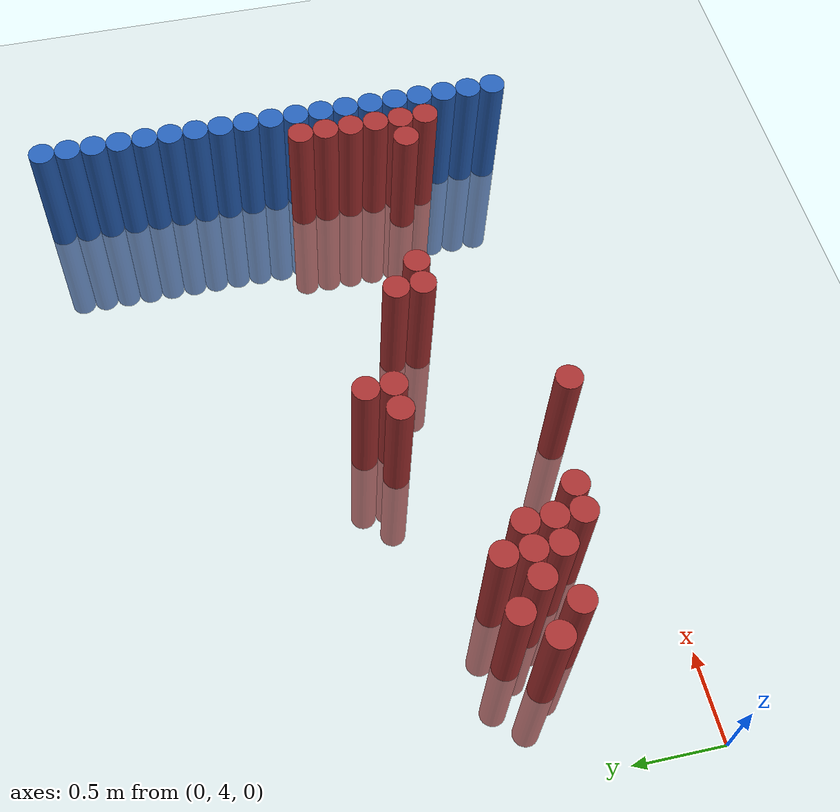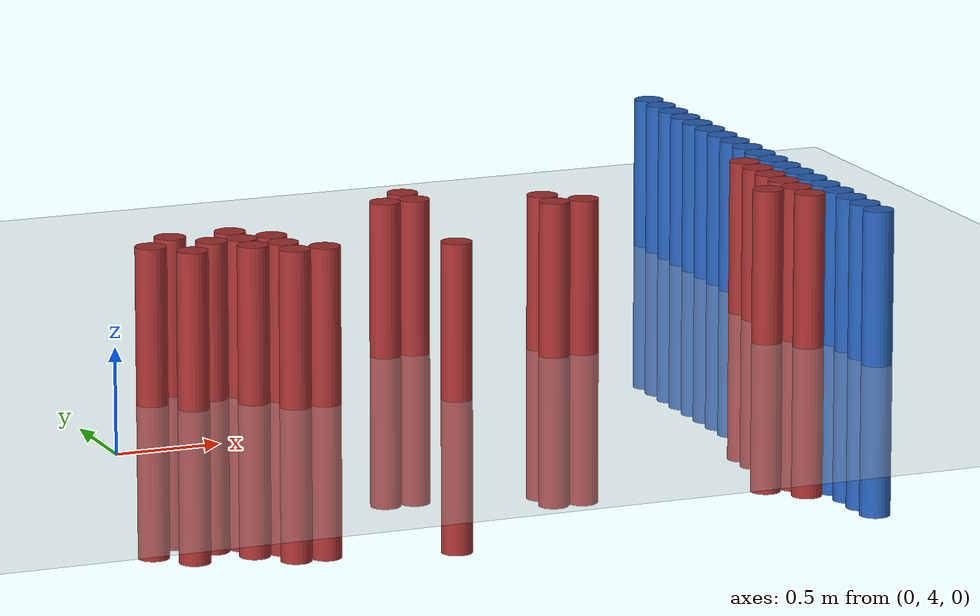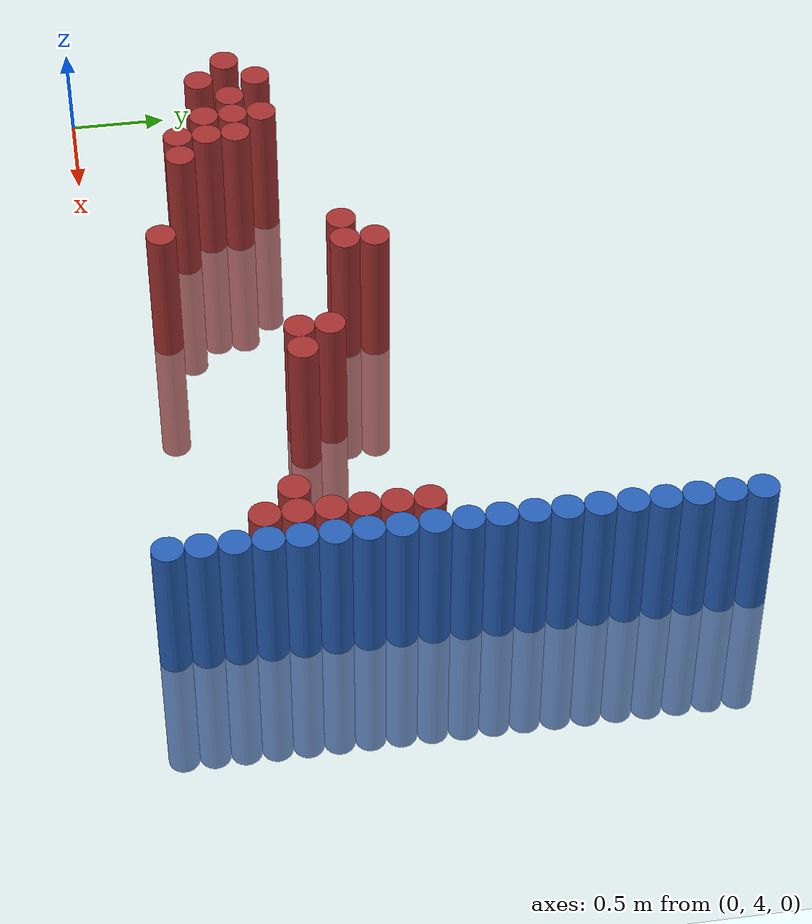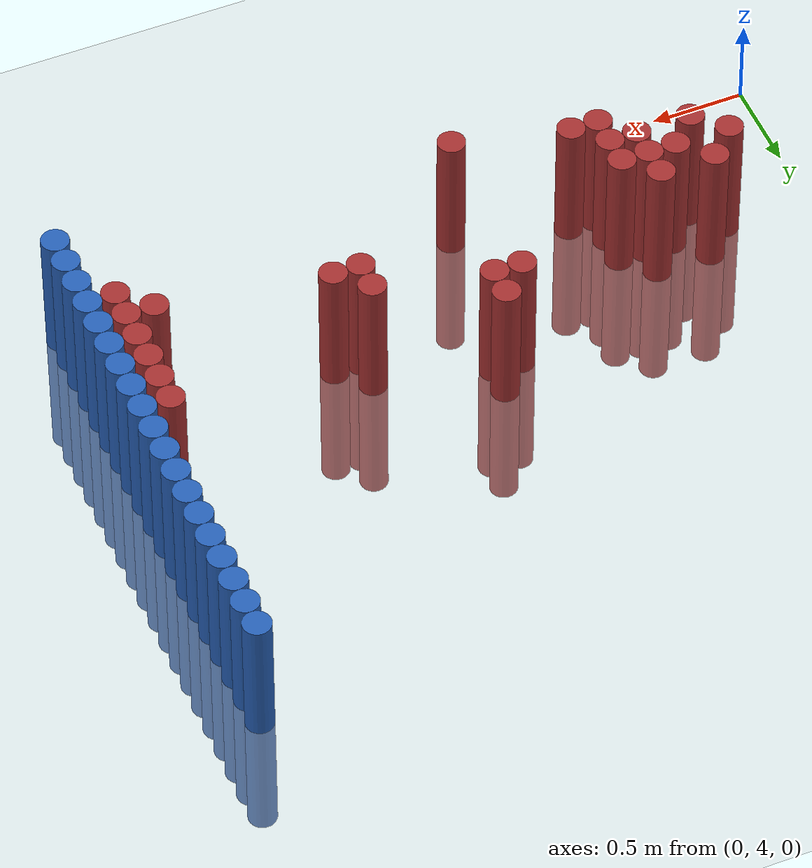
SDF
<sdf version="1.6">
 <world name="default">
  <model name="ground_plane">
   <static>1</static>
   <link name="link">
    <collision name="collision">
     <geometry><plane><normal>0 0 1</normal><size>100 100</size></plane></geometry>
     <surface><friction><ode><mu>100</mu><mu2>50</mu2></ode></friction></surface>
    </collision>
    <visual name="visual">
     <cast_shadows>0</cast_shadows>
     <geometry><plane><normal>0 0 1</normal><size>100 100</size></plane></geometry>
     <material>
      <script><uri>file://media/materials/scripts/gazebo.material</uri><name>Gazebo/Grey</name></script>
     </material>
    </visual>
   </link>
  </model>
  <model name="unit_cylinder_172">
   <static>1</static>
   <pose>3.925000 4.375000 0.000000 0.000000 0.000000 0.000000</pose>
   <link name="link">
    <inertial>
     <mass>1</mass>
     <inertia><ixx>0.145833</ixx><ixy>0</ixy><ixz>0</ixz><iyy>0.145833</iyy><iyz>0</iyz><izz>0.125</izz></inertia>
    </inertial>
    <collision name="collision">
     <geometry><cylinder><radius>0.075000</radius><length>1.5</length></cylinder></geometry>
    </collision>
    <visual name="visual">
     <geometry><cylinder><radius>0.075000</radius><length>1.5</length></cylinder></geometry>
     <material>
      <ambient>0.152000 0.379000 0.720000 1</ambient>
      <diffuse>0.152000 0.379000 0.720000 1</diffuse>
     </material>
     <material>
      <script><name>Gazebo/Grey</name><uri>file://media/materials/scripts/gazebo.material</uri></script>
     </material>
    </visual>
   </link>
  </model>
  <model name="unit_cylinder_174">
   <static>1</static>
   <pose>3.925000 4.525000 0.000000 0.000000 0.000000 0.000000</pose>
   <link name="link">
    <inertial>
     <mass>1</mass>
     <inertia><ixx>0.145833</ixx><ixy>0</ixy><ixz>0</ixz><iyy>0.145833</iyy><iyz>0</iyz><izz>0.125</izz></inertia>
    </inertial>
    <collision name="collision">
     <geometry><cylinder><radius>0.075000</radius><length>1.5</length></cylinder></geometry>
    </collision>
    <visual name="visual">
     <geometry><cylinder><radius>0.075000</radius><length>1.5</length></cylinder></geometry>
     <material>
      <ambient>0.152000 0.379000 0.720000 1</ambient>
      <diffuse>0.152000 0.379000 0.720000 1</diffuse>
     </material>
     <material>
      <script><name>Gazebo/Grey</name><uri>file://media/materials/scripts/gazebo.material</uri></script>
     </material>
    </visual>
   </link>
  </model>
  <model name="unit_cylinder_176">
   <static>1</static>
   <pose>3.925000 4.675000 0.000000 0.000000 0.000000 0.000000</pose>
   <link name="link">
    <inertial>
     <mass>1</mass>
     <inertia><ixx>0.145833</ixx><ixy>0</ixy><ixz>0</ixz><iyy>0.145833</iyy><iyz>0</iyz><izz>0.125</izz></inertia>
    </inertial>
    <collision name="collision">
     <geometry><cylinder><radius>0.075000</radius><length>1.5</length></cylinder></geometry>
    </collision>
    <visual name="visual">
     <geometry><cylinder><radius>0.075000</radius><length>1.5</length></cylinder></geometry>
     <material>
      <ambient>0.152000 0.379000 0.720000 1</ambient>
      <diffuse>0.152000 0.379000 0.720000 1</diffuse>
     </material>
     <material>
      <script><name>Gazebo/Grey</name><uri>file://media/materials/scripts/gazebo.material</uri></script>
     </material>
    </visual>
   </link>
  </model>
  <model name="unit_cylinder_178">
   <static>1</static>
   <pose>3.925000 4.825000 0.000000 0.000000 0.000000 0.000000</pose>
   <link name="link">
    <inertial>
     <mass>1</mass>
     <inertia><ixx>0.145833</ixx><ixy>0</ixy><ixz>0</ixz><iyy>0.145833</iyy><iyz>0</iyz><izz>0.125</izz></inertia>
    </inertial>
    <collision name="collision">
     <geometry><cylinder><radius>0.075000</radius><length>1.5</length></cylinder></geometry>
    </collision>
    <visual name="visual">
     <geometry><cylinder><radius>0.075000</radius><length>1.5</length></cylinder></geometry>
     <material>
      <ambient>0.152000 0.379000 0.720000 1</ambient>
      <diffuse>0.152000 0.379000 0.720000 1</diffuse>
     </material>
     <material>
      <script><name>Gazebo/Grey</name><uri>file://media/materials/scripts/gazebo.material</uri></script>
     </material>
    </visual>
   </link>
  </model>
  <model name="unit_cylinder_180">
   <static>1</static>
   <pose>3.925000 4.975000 0.000000 0.000000 0.000000 0.000000</pose>
   <link name="link">
    <inertial>
     <mass>1</mass>
     <inertia><ixx>0.145833</ixx><ixy>0</ixy><ixz>0</ixz><iyy>0.145833</iyy><iyz>0</iyz><izz>0.125</izz></inertia>
    </inertial>
    <collision name="collision">
     <geometry><cylinder><radius>0.075000</radius><length>1.5</length></cylinder></geometry>
    </collision>
    <visual name="visual">
     <geometry><cylinder><radius>0.075000</radius><length>1.5</length></cylinder></geometry>
     <material>
      <ambient>0.152000 0.379000 0.720000 1</ambient>
      <diffuse>0.152000 0.379000 0.720000 1</diffuse>
     </material>
     <material>
      <script><name>Gazebo/Grey</name><uri>file://media/materials/scripts/gazebo.material</uri></script>
     </material>
    </visual>
   </link>
  </model>
  <model name="unit_cylinder_182">
   <static>1</static>
   <pose>3.925000 5.125000 0.000000 0.000000 0.000000 0.000000</pose>
   <link name="link">
    <inertial>
     <mass>1</mass>
     <inertia><ixx>0.145833</ixx><ixy>0</ixy><ixz>0</ixz><iyy>0.145833</iyy><iyz>0</iyz><izz>0.125</izz></inertia>
    </inertial>
    <collision name="collision">
     <geometry><cylinder><radius>0.075000</radius><length>1.5</length></cylinder></geometry>
    </collision>
    <visual name="visual">
     <geometry><cylinder><radius>0.075000</radius><length>1.5</length></cylinder></geometry>
     <material>
      <ambient>0.152000 0.379000 0.720000 1</ambient>
      <diffuse>0.152000 0.379000 0.720000 1</diffuse>
     </material>
     <material>
      <script><name>Gazebo/Grey</name><uri>file://media/materials/scripts/gazebo.material</uri></script>
     </material>
    </visual>
   </link>
  </model>
  <model name="unit_cylinder_184">
   <static>1</static>
   <pose>3.925000 5.275000 0.000000 0.000000 0.000000 0.000000</pose>
   <link name="link">
    <inertial>
     <mass>1</mass>
     <inertia><ixx>0.145833</ixx><ixy>0</ixy><ixz>0</ixz><iyy>0.145833</iyy><iyz>0</iyz><izz>0.125</izz></inertia>
    </inertial>
    <collision name="collision">
     <geometry><cylinder><radius>0.075000</radius><length>1.5</length></cylinder></geometry>
    </collision>
    <visual name="visual">
     <geometry><cylinder><radius>0.075000</radius><length>1.5</length></cylinder></geometry>
     <material>
      <ambient>0.152000 0.379000 0.720000 1</ambient>
      <diffuse>0.152000 0.379000 0.720000 1</diffuse>
     </material>
     <material>
      <script><name>Gazebo/Grey</name><uri>file://media/materials/scripts/gazebo.material</uri></script>
     </material>
    </visual>
   </link>
  </model>
  <model name="unit_cylinder_186">
   <static>1</static>
   <pose>3.925000 5.425000 0.000000 0.000000 0.000000 0.000000</pose>
   <link name="link">
    <inertial>
     <mass>1</mass>
     <inertia><ixx>0.145833</ixx><ixy>0</ixy><ixz>0</ixz><iyy>0.145833</iyy><iyz>0</iyz><izz>0.125</izz></inertia>
    </inertial>
    <collision name="collision">
     <geometry><cylinder><radius>0.075000</radius><length>1.5</length></cylinder></geometry>
    </collision>
    <visual name="visual">
     <geometry><cylinder><radius>0.075000</radius><length>1.5</length></cylinder></geometry>
     <material>
      <ambient>0.152000 0.379000 0.720000 1</ambient>
      <diffuse>0.152000 0.379000 0.720000 1</diffuse>
     </material>
     <material>
      <script><name>Gazebo/Grey</name><uri>file://media/materials/scripts/gazebo.material</uri></script>
     </material>
    </visual>
   </link>
  </model>
  <model name="unit_cylinder_188">
   <static>1</static>
   <pose>3.925000 5.575000 0.000000 0.000000 0.000000 0.000000</pose>
   <link name="link">
    <inertial>
     <mass>1</mass>
     <inertia><ixx>0.145833</ixx><ixy>0</ixy><ixz>0</ixz><iyy>0.145833</iyy><iyz>0</iyz><izz>0.125</izz></inertia>
    </inertial>
    <collision name="collision">
     <geometry><cylinder><radius>0.075000</radius><length>1.5</length></cylinder></geometry>
    </collision>
    <visual name="visual">
     <geometry><cylinder><radius>0.075000</radius><length>1.5</length></cylinder></geometry>
     <material>
      <ambient>0.152000 0.379000 0.720000 1</ambient>
      <diffuse>0.152000 0.379000 0.720000 1</diffuse>
     </material>
     <material>
      <script><name>Gazebo/Grey</name><uri>file://media/materials/scripts/gazebo.material</uri></script>
     </material>
    </visual>
   </link>
  </model>
  <model name="unit_cylinder_190">
   <static>1</static>
   <pose>3.925000 5.725000 0.000000 0.000000 0.000000 0.000000</pose>
   <link name="link">
    <inertial>
     <mass>1</mass>
     <inertia><ixx>0.145833</ixx><ixy>0</ixy><ixz>0</ixz><iyy>0.145833</iyy><iyz>0</iyz><izz>0.125</izz></inertia>
    </inertial>
    <collision name="collision">
     <geometry><cylinder><radius>0.075000</radius><length>1.5</length></cylinder></geometry>
    </collision>
    <visual name="visual">
     <geometry><cylinder><radius>0.075000</radius><length>1.5</length></cylinder></geometry>
     <material>
      <ambient>0.152000 0.379000 0.720000 1</ambient>
      <diffuse>0.152000 0.379000 0.720000 1</diffuse>
     </material>
     <material>
      <script><name>Gazebo/Grey</name><uri>file://media/materials/scripts/gazebo.material</uri></script>
     </material>
    </visual>
   </link>
  </model>
  <model name="unit_cylinder_192">
   <static>1</static>
   <pose>3.925000 5.875000 0.000000 0.000000 0.000000 0.000000</pose>
   <link name="link">
    <inertial>
     <mass>1</mass>
     <inertia><ixx>0.145833</ixx><ixy>0</ixy><ixz>0</ixz><iyy>0.145833</iyy><iyz>0</iyz><izz>0.125</izz></inertia>
    </inertial>
    <collision name="collision">
     <geometry><cylinder><radius>0.075000</radius><length>1.5</length></cylinder></geometry>
    </collision>
    <visual name="visual">
     <geometry><cylinder><radius>0.075000</radius><length>1.5</length></cylinder></geometry>
     <material>
      <ambient>0.152000 0.379000 0.720000 1</ambient>
      <diffuse>0.152000 0.379000 0.720000 1</diffuse>
     </material>
     <material>
      <script><name>Gazebo/Grey</name><uri>file://media/materials/scripts/gazebo.material</uri></script>
     </material>
    </visual>
   </link>
  </model>
  <model name="unit_cylinder_194">
   <static>1</static>
   <pose>3.925000 6.025000 0.000000 0.000000 0.000000 0.000000</pose>
   <link name="link">
    <inertial>
     <mass>1</mass>
     <inertia><ixx>0.145833</ixx><ixy>0</ixy><ixz>0</ixz><iyy>0.145833</iyy><iyz>0</iyz><izz>0.125</izz></inertia>
    </inertial>
    <collision name="collision">
     <geometry><cylinder><radius>0.075000</radius><length>1.5</length></cylinder></geometry>
    </collision>
    <visual name="visual">
     <geometry><cylinder><radius>0.075000</radius><length>1.5</length></cylinder></geometry>
     <material>
      <ambient>0.152000 0.379000 0.720000 1</ambient>
      <diffuse>0.152000 0.379000 0.720000 1</diffuse>
     </material>
     <material>
      <script><name>Gazebo/Grey</name><uri>file://media/materials/scripts/gazebo.material</uri></script>
     </material>
    </visual>
   </link>
  </model>
  <model name="unit_cylinder_196">
   <static>1</static>
   <pose>3.925000 6.175000 0.000000 0.000000 0.000000 0.000000</pose>
   <link name="link">
    <inertial>
     <mass>1</mass>
     <inertia><ixx>0.145833</ixx><ixy>0</ixy><ixz>0</ixz><iyy>0.145833</iyy><iyz>0</iyz><izz>0.125</izz></inertia>
    </inertial>
    <collision name="collision">
     <geometry><cylinder><radius>0.075000</radius><length>1.5</length></cylinder></geometry>
    </collision>
    <visual name="visual">
     <geometry><cylinder><radius>0.075000</radius><length>1.5</length></cylinder></geometry>
     <material>
      <ambient>0.152000 0.379000 0.720000 1</ambient>
      <diffuse>0.152000 0.379000 0.720000 1</diffuse>
     </material>
     <material>
      <script><name>Gazebo/Grey</name><uri>file://media/materials/scripts/gazebo.material</uri></script>
     </material>
    </visual>
   </link>
  </model>
  <model name="unit_cylinder_198">
   <static>1</static>
   <pose>3.925000 6.325000 0.000000 0.000000 0.000000 0.000000</pose>
   <link name="link">
    <inertial>
     <mass>1</mass>
     <inertia><ixx>0.145833</ixx><ixy>0</ixy><ixz>0</ixz><iyy>0.145833</iyy><iyz>0</iyz><izz>0.125</izz></inertia>
    </inertial>
    <collision name="collision">
     <geometry><cylinder><radius>0.075000</radius><length>1.5</length></cylinder></geometry>
    </collision>
    <visual name="visual">
     <geometry><cylinder><radius>0.075000</radius><length>1.5</length></cylinder></geometry>
     <material>
      <ambient>0.152000 0.379000 0.720000 1</ambient>
      <diffuse>0.152000 0.379000 0.720000 1</diffuse>
     </material>
     <material>
      <script><name>Gazebo/Grey</name><uri>file://media/materials/scripts/gazebo.material</uri></script>
     </material>
    </visual>
   </link>
  </model>
  <model name="unit_cylinder_200">
   <static>1</static>
   <pose>3.925000 6.475000 0.000000 0.000000 0.000000 0.000000</pose>
   <link name="link">
    <inertial>
     <mass>1</mass>
     <inertia><ixx>0.145833</ixx><ixy>0</ixy><ixz>0</ixz><iyy>0.145833</iyy><iyz>0</iyz><izz>0.125</izz></inertia>
    </inertial>
    <collision name="collision">
     <geometry><cylinder><radius>0.075000</radius><length>1.5</length></cylinder></geometry>
    </collision>
    <visual name="visual">
     <geometry><cylinder><radius>0.075000</radius><length>1.5</length></cylinder></geometry>
     <material>
      <ambient>0.152000 0.379000 0.720000 1</ambient>
      <diffuse>0.152000 0.379000 0.720000 1</diffuse>
     </material>
     <material>
      <script><name>Gazebo/Grey</name><uri>file://media/materials/scripts/gazebo.material</uri></script>
     </material>
    </visual>
   </link>
  </model>
  <model name="unit_cylinder_202">
   <static>1</static>
   <pose>3.925000 6.625000 0.000000 0.000000 0.000000 0.000000</pose>
   <link name="link">
    <inertial>
     <mass>1</mass>
     <inertia><ixx>0.145833</ixx><ixy>0</ixy><ixz>0</ixz><iyy>0.145833</iyy><iyz>0</iyz><izz>0.125</izz></inertia>
    </inertial>
    <collision name="collision">
     <geometry><cylinder><radius>0.075000</radius><length>1.5</length></cylinder></geometry>
    </collision>
    <visual name="visual">
     <geometry><cylinder><radius>0.075000</radius><length>1.5</length></cylinder></geometry>
     <material>
      <ambient>0.152000 0.379000 0.720000 1</ambient>
      <diffuse>0.152000 0.379000 0.720000 1</diffuse>
     </material>
     <material>
      <script><name>Gazebo/Grey</name><uri>file://media/materials/scripts/gazebo.material</uri></script>
     </material>
    </visual>
   </link>
  </model>
  <model name="unit_cylinder_204">
   <static>1</static>
   <pose>3.925000 6.775000 0.000000 0.000000 0.000000 0.000000</pose>
   <link name="link">
    <inertial>
     <mass>1</mass>
     <inertia><ixx>0.145833</ixx><ixy>0</ixy><ixz>0</ixz><iyy>0.145833</iyy><iyz>0</iyz><izz>0.125</izz></inertia>
    </inertial>
    <collision name="collision">
     <geometry><cylinder><radius>0.075000</radius><length>1.5</length></cylinder></geometry>
    </collision>
    <visual name="visual">
     <geometry><cylinder><radius>0.075000</radius><length>1.5</length></cylinder></geometry>
     <material>
      <ambient>0.152000 0.379000 0.720000 1</ambient>
      <diffuse>0.152000 0.379000 0.720000 1</diffuse>
     </material>
     <material>
      <script><name>Gazebo/Grey</name><uri>file://media/materials/scripts/gazebo.material</uri></script>
     </material>
    </visual>
   </link>
  </model>
  <model name="unit_cylinder_206">
   <static>1</static>
   <pose>3.925000 6.925000 0.000000 0.000000 0.000000 0.000000</pose>
   <link name="link">
    <inertial>
     <mass>1</mass>
     <inertia><ixx>0.145833</ixx><ixy>0</ixy><ixz>0</ixz><iyy>0.145833</iyy><iyz>0</iyz><izz>0.125</izz></inertia>
    </inertial>
    <collision name="collision">
     <geometry><cylinder><radius>0.075000</radius><length>1.5</length></cylinder></geometry>
    </collision>
    <visual name="visual">
     <geometry><cylinder><radius>0.075000</radius><length>1.5</length></cylinder></geometry>
     <material>
      <ambient>0.152000 0.379000 0.720000 1</ambient>
      <diffuse>0.152000 0.379000 0.720000 1</diffuse>
     </material>
     <material>
      <script><name>Gazebo/Grey</name><uri>file://media/materials/scripts/gazebo.material</uri></script>
     </material>
    </visual>
   </link>
  </model>
  <model name="unit_cylinder_376">
   <static>1</static>
   <pose>0.475000 4.825000 0.000000 0.000000 0.000000 0.000000</pose>
   <link name="link">
    <inertial>
     <mass>1</mass>
     <inertia><ixx>0.145833</ixx><ixy>0</ixy><ixz>0</ixz><iyy>0.145833</iyy><iyz>0</iyz><izz>0.125</izz></inertia>
    </inertial>
    <collision name="collision">
     <geometry><cylinder><radius>0.075000</radius><length>1.5</length></cylinder></geometry>
    </collision>
    <visual name="visual">
     <geometry><cylinder><radius>0.075000</radius><length>1.5</length></cylinder></geometry>
     <material>
      <ambient>0.648000 0.192000 0.192000 1</ambient>
      <diffuse>0.648000 0.192000 0.192000 1</diffuse>
     </material>
     <material>
      <script><name>Gazebo/Grey</name><uri>file://media/materials/scripts/gazebo.material</uri></script>
     </material>
    </visual>
   </link>
  </model>
  <model name="unit_cylinder_378">
   <static>1</static>
   <pose>0.625000 4.675000 0.000000 0.000000 0.000000 0.000000</pose>
   <link name="link">
    <inertial>
     <mass>1</mass>
     <inertia><ixx>0.145833</ixx><ixy>0</ixy><ixz>0</ixz><iyy>0.145833</iyy><iyz>0</iyz><izz>0.125</izz></inertia>
    </inertial>
    <collision name="collision">
     <geometry><cylinder><radius>0.075000</radius><length>1.5</length></cylinder></geometry>
    </collision>
    <visual name="visual">
     <geometry><cylinder><radius>0.075000</radius><length>1.5</length></cylinder></geometry>
     <material>
      <ambient>0.648000 0.192000 0.192000 1</ambient>
      <diffuse>0.648000 0.192000 0.192000 1</diffuse>
     </material>
     <material>
      <script><name>Gazebo/Grey</name><uri>file://media/materials/scripts/gazebo.material</uri></script>
     </material>
    </visual>
   </link>
  </model>
  <model name="unit_cylinder_379">
   <static>1</static>
   <pose>0.625000 4.975000 0.000000 0.000000 0.000000 0.000000</pose>
   <link name="link">
    <inertial>
     <mass>1</mass>
     <inertia><ixx>0.145833</ixx><ixy>0</ixy><ixz>0</ixz><iyy>0.145833</iyy><iyz>0</iyz><izz>0.125</izz></inertia>
    </inertial>
    <collision name="collision">
     <geometry><cylinder><radius>0.075000</radius><length>1.5</length></cylinder></geometry>
    </collision>
    <visual name="visual">
     <geometry><cylinder><radius>0.075000</radius><length>1.5</length></cylinder></geometry>
     <material>
      <ambient>0.648000 0.192000 0.192000 1</ambient>
      <diffuse>0.648000 0.192000 0.192000 1</diffuse>
     </material>
     <material>
      <script><name>Gazebo/Grey</name><uri>file://media/materials/scripts/gazebo.material</uri></script>
     </material>
    </visual>
   </link>
  </model>
  <model name="unit_cylinder_380">
   <static>1</static>
   <pose>0.775000 4.825000 0.000000 0.000000 0.000000 0.000000</pose>
   <link name="link">
    <inertial>
     <mass>1</mass>
     <inertia><ixx>0.145833</ixx><ixy>0</ixy><ixz>0</ixz><iyy>0.145833</iyy><iyz>0</iyz><izz>0.125</izz></inertia>
    </inertial>
    <collision name="collision">
     <geometry><cylinder><radius>0.075000</radius><length>1.5</length></cylinder></geometry>
    </collision>
    <visual name="visual">
     <geometry><cylinder><radius>0.075000</radius><length>1.5</length></cylinder></geometry>
     <material>
      <ambient>0.648000 0.192000 0.192000 1</ambient>
      <diffuse>0.648000 0.192000 0.192000 1</diffuse>
     </material>
     <material>
      <script><name>Gazebo/Grey</name><uri>file://media/materials/scripts/gazebo.material</uri></script>
     </material>
    </visual>
   </link>
  </model>
  <model name="unit_cylinder_386">
   <static>1</static>
   <pose>0.925000 4.675000 0.000000 0.000000 0.000000 0.000000</pose>
   <link name="link">
    <inertial>
     <mass>1</mass>
     <inertia><ixx>0.145833</ixx><ixy>0</ixy><ixz>0</ixz><iyy>0.145833</iyy><iyz>0</iyz><izz>0.125</izz></inertia>
    </inertial>
    <collision name="collision">
     <geometry><cylinder><radius>0.075000</radius><length>1.5</length></cylinder></geometry>
    </collision>
    <visual name="visual">
     <geometry><cylinder><radius>0.075000</radius><length>1.5</length></cylinder></geometry>
     <material>
      <ambient>0.648000 0.192000 0.192000 1</ambient>
      <diffuse>0.648000 0.192000 0.192000 1</diffuse>
     </material>
     <material>
      <script><name>Gazebo/Grey</name><uri>file://media/materials/scripts/gazebo.material</uri></script>
     </material>
    </visual>
   </link>
  </model>
  <model name="unit_cylinder_387">
   <static>1</static>
   <pose>0.925000 4.825000 0.000000 0.000000 0.000000 0.000000</pose>
   <link name="link">
    <inertial>
     <mass>1</mass>
     <inertia><ixx>0.145833</ixx><ixy>0</ixy><ixz>0</ixz><iyy>0.145833</iyy><iyz>0</iyz><izz>0.125</izz></inertia>
    </inertial>
    <collision name="collision">
     <geometry><cylinder><radius>0.075000</radius><length>1.5</length></cylinder></geometry>
    </collision>
    <visual name="visual">
     <geometry><cylinder><radius>0.075000</radius><length>1.5</length></cylinder></geometry>
     <material>
      <ambient>0.648000 0.192000 0.192000 1</ambient>
      <diffuse>0.648000 0.192000 0.192000 1</diffuse>
     </material>
     <material>
      <script><name>Gazebo/Grey</name><uri>file://media/materials/scripts/gazebo.material</uri></script>
     </material>
    </visual>
   </link>
  </model>
  <model name="unit_cylinder_388">
   <static>1</static>
   <pose>0.925000 4.975000 0.000000 0.000000 0.000000 0.000000</pose>
   <link name="link">
    <inertial>
     <mass>1</mass>
     <inertia><ixx>0.145833</ixx><ixy>0</ixy><ixz>0</ixz><iyy>0.145833</iyy><iyz>0</iyz><izz>0.125</izz></inertia>
    </inertial>
    <collision name="collision">
     <geometry><cylinder><radius>0.075000</radius><length>1.5</length></cylinder></geometry>
    </collision>
    <visual name="visual">
     <geometry><cylinder><radius>0.075000</radius><length>1.5</length></cylinder></geometry>
     <material>
      <ambient>0.648000 0.192000 0.192000 1</ambient>
      <diffuse>0.648000 0.192000 0.192000 1</diffuse>
     </material>
     <material>
      <script><name>Gazebo/Grey</name><uri>file://media/materials/scripts/gazebo.material</uri></script>
     </material>
    </visual>
   </link>
  </model>
  <model name="unit_cylinder_397">
   <static>1</static>
   <pose>1.075000 4.525000 0.000000 0.000000 0.000000 0.000000</pose>
   <link name="link">
    <inertial>
     <mass>1</mass>
     <inertia><ixx>0.145833</ixx><ixy>0</ixy><ixz>0</ixz><iyy>0.145833</iyy><iyz>0</iyz><izz>0.125</izz></inertia>
    </inertial>
    <collision name="collision">
     <geometry><cylinder><radius>0.075000</radius><length>1.5</length></cylinder></geometry>
    </collision>
    <visual name="visual">
     <geometry><cylinder><radius>0.075000</radius><length>1.5</length></cylinder></geometry>
     <material>
      <ambient>0.648000 0.192000 0.192000 1</ambient>
      <diffuse>0.648000 0.192000 0.192000 1</diffuse>
     </material>
     <material>
      <script><name>Gazebo/Grey</name><uri>file://media/materials/scripts/gazebo.material</uri></script>
     </material>
    </visual>
   </link>
  </model>
  <model name="unit_cylinder_398">
   <static>1</static>
   <pose>1.075000 4.675000 0.000000 0.000000 0.000000 0.000000</pose>
   <link name="link">
    <inertial>
     <mass>1</mass>
     <inertia><ixx>0.145833</ixx><ixy>0</ixy><ixz>0</ixz><iyy>0.145833</iyy><iyz>0</iyz><izz>0.125</izz></inertia>
    </inertial>
    <collision name="collision">
     <geometry><cylinder><radius>0.075000</radius><length>1.5</length></cylinder></geometry>
    </collision>
    <visual name="visual">
     <geometry><cylinder><radius>0.075000</radius><length>1.5</length></cylinder></geometry>
     <material>
      <ambient>0.648000 0.192000 0.192000 1</ambient>
      <diffuse>0.648000 0.192000 0.192000 1</diffuse>
     </material>
     <material>
      <script><name>Gazebo/Grey</name><uri>file://media/materials/scripts/gazebo.material</uri></script>
     </material>
    </visual>
   </link>
  </model>
  <model name="unit_cylinder_399">
   <static>1</static>
   <pose>1.075000 4.825000 0.000000 0.000000 0.000000 0.000000</pose>
   <link name="link">
    <inertial>
     <mass>1</mass>
     <inertia><ixx>0.145833</ixx><ixy>0</ixy><ixz>0</ixz><iyy>0.145833</iyy><iyz>0</iyz><izz>0.125</izz></inertia>
    </inertial>
    <collision name="collision">
     <geometry><cylinder><radius>0.075000</radius><length>1.5</length></cylinder></geometry>
    </collision>
    <visual name="visual">
     <geometry><cylinder><radius>0.075000</radius><length>1.5</length></cylinder></geometry>
     <material>
      <ambient>0.648000 0.192000 0.192000 1</ambient>
      <diffuse>0.648000 0.192000 0.192000 1</diffuse>
     </material>
     <material>
      <script><name>Gazebo/Grey</name><uri>file://media/materials/scripts/gazebo.material</uri></script>
     </material>
    </visual>
   </link>
  </model>
  <model name="unit_cylinder_400">
   <static>1</static>
   <pose>1.225000 4.525000 0.000000 0.000000 0.000000 0.000000</pose>
   <link name="link">
    <inertial>
     <mass>1</mass>
     <inertia><ixx>0.145833</ixx><ixy>0</ixy><ixz>0</ixz><iyy>0.145833</iyy><iyz>0</iyz><izz>0.125</izz></inertia>
    </inertial>
    <collision name="collision">
     <geometry><cylinder><radius>0.075000</radius><length>1.5</length></cylinder></geometry>
    </collision>
    <visual name="visual">
     <geometry><cylinder><radius>0.075000</radius><length>1.5</length></cylinder></geometry>
     <material>
      <ambient>0.648000 0.192000 0.192000 1</ambient>
      <diffuse>0.648000 0.192000 0.192000 1</diffuse>
     </material>
     <material>
      <script><name>Gazebo/Grey</name><uri>file://media/materials/scripts/gazebo.material</uri></script>
     </material>
    </visual>
   </link>
  </model>
  <model name="unit_cylinder_419">
   <static>1</static>
   <pose>1.825000 4.375000 0.000000 0.000000 0.000000 0.000000</pose>
   <link name="link">
    <inertial>
     <mass>1</mass>
     <inertia><ixx>0.145833</ixx><ixy>0</ixy><ixz>0</ixz><iyy>0.145833</iyy><iyz>0</iyz><izz>0.125</izz></inertia>
    </inertial>
    <collision name="collision">
     <geometry><cylinder><radius>0.075000</radius><length>1.5</length></cylinder></geometry>
    </collision>
    <visual name="visual">
     <geometry><cylinder><radius>0.075000</radius><length>1.5</length></cylinder></geometry>
     <material>
      <ambient>0.648000 0.192000 0.192000 1</ambient>
      <diffuse>0.648000 0.192000 0.192000 1</diffuse>
     </material>
     <material>
      <script><name>Gazebo/Grey</name><uri>file://media/materials/scripts/gazebo.material</uri></script>
     </material>
    </visual>
   </link>
  </model>
  <model name="unit_cylinder_420">
   <static>1</static>
   <pose>1.825000 5.275000 0.000000 0.000000 0.000000 0.000000</pose>
   <link name="link">
    <inertial>
     <mass>1</mass>
     <inertia><ixx>0.145833</ixx><ixy>0</ixy><ixz>0</ixz><iyy>0.145833</iyy><iyz>0</iyz><izz>0.125</izz></inertia>
    </inertial>
    <collision name="collision">
     <geometry><cylinder><radius>0.075000</radius><length>1.5</length></cylinder></geometry>
    </collision>
    <visual name="visual">
     <geometry><cylinder><radius>0.075000</radius><length>1.5</length></cylinder></geometry>
     <material>
      <ambient>0.648000 0.192000 0.192000 1</ambient>
      <diffuse>0.648000 0.192000 0.192000 1</diffuse>
     </material>
     <material>
      <script><name>Gazebo/Grey</name><uri>file://media/materials/scripts/gazebo.material</uri></script>
     </material>
    </visual>
   </link>
  </model>
  <model name="unit_cylinder_426">
   <static>1</static>
   <pose>1.975000 5.275000 0.000000 0.000000 0.000000 0.000000</pose>
   <link name="link">
    <inertial>
     <mass>1</mass>
     <inertia><ixx>0.145833</ixx><ixy>0</ixy><ixz>0</ixz><iyy>0.145833</iyy><iyz>0</iyz><izz>0.125</izz></inertia>
    </inertial>
    <collision name="collision">
     <geometry><cylinder><radius>0.075000</radius><length>1.5</length></cylinder></geometry>
    </collision>
    <visual name="visual">
     <geometry><cylinder><radius>0.075000</radius><length>1.5</length></cylinder></geometry>
     <material>
      <ambient>0.648000 0.192000 0.192000 1</ambient>
      <diffuse>0.648000 0.192000 0.192000 1</diffuse>
     </material>
     <material>
      <script><name>Gazebo/Grey</name><uri>file://media/materials/scripts/gazebo.material</uri></script>
     </material>
    </visual>
   </link>
  </model>
  <model name="unit_cylinder_427">
   <static>1</static>
   <pose>1.975000 5.425000 0.000000 0.000000 0.000000 0.000000</pose>
   <link name="link">
    <inertial>
     <mass>1</mass>
     <inertia><ixx>0.145833</ixx><ixy>0</ixy><ixz>0</ixz><iyy>0.145833</iyy><iyz>0</iyz><izz>0.125</izz></inertia>
    </inertial>
    <collision name="collision">
     <geometry><cylinder><radius>0.075000</radius><length>1.5</length></cylinder></geometry>
    </collision>
    <visual name="visual">
     <geometry><cylinder><radius>0.075000</radius><length>1.5</length></cylinder></geometry>
     <material>
      <ambient>0.648000 0.192000 0.192000 1</ambient>
      <diffuse>0.648000 0.192000 0.192000 1</diffuse>
     </material>
     <material>
      <script><name>Gazebo/Grey</name><uri>file://media/materials/scripts/gazebo.material</uri></script>
     </material>
    </visual>
   </link>
  </model>
  <model name="unit_cylinder_453">
   <static>1</static>
   <pose>2.575000 4.975000 0.000000 0.000000 0.000000 0.000000</pose>
   <link name="link">
    <inertial>
     <mass>1</mass>
     <inertia><ixx>0.145833</ixx><ixy>0</ixy><ixz>0</ixz><iyy>0.145833</iyy><iyz>0</iyz><izz>0.125</izz></inertia>
    </inertial>
    <collision name="collision">
     <geometry><cylinder><radius>0.075000</radius><length>1.5</length></cylinder></geometry>
    </collision>
    <visual name="visual">
     <geometry><cylinder><radius>0.075000</radius><length>1.5</length></cylinder></geometry>
     <material>
      <ambient>0.648000 0.192000 0.192000 1</ambient>
      <diffuse>0.648000 0.192000 0.192000 1</diffuse>
     </material>
     <material>
      <script><name>Gazebo/Grey</name><uri>file://media/materials/scripts/gazebo.material</uri></script>
     </material>
    </visual>
   </link>
  </model>
  <model name="unit_cylinder_454">
   <static>1</static>
   <pose>2.575000 5.125000 0.000000 0.000000 0.000000 0.000000</pose>
   <link name="link">
    <inertial>
     <mass>1</mass>
     <inertia><ixx>0.145833</ixx><ixy>0</ixy><ixz>0</ixz><iyy>0.145833</iyy><iyz>0</iyz><izz>0.125</izz></inertia>
    </inertial>
    <collision name="collision">
     <geometry><cylinder><radius>0.075000</radius><length>1.5</length></cylinder></geometry>
    </collision>
    <visual name="visual">
     <geometry><cylinder><radius>0.075000</radius><length>1.5</length></cylinder></geometry>
     <material>
      <ambient>0.648000 0.192000 0.192000 1</ambient>
      <diffuse>0.648000 0.192000 0.192000 1</diffuse>
     </material>
     <material>
      <script><name>Gazebo/Grey</name><uri>file://media/materials/scripts/gazebo.material</uri></script>
     </material>
    </visual>
   </link>
  </model>
  <model name="unit_cylinder_457">
   <static>1</static>
   <pose>2.725000 4.975000 0.000000 0.000000 0.000000 0.000000</pose>
   <link name="link">
    <inertial>
     <mass>1</mass>
     <inertia><ixx>0.145833</ixx><ixy>0</ixy><ixz>0</ixz><iyy>0.145833</iyy><iyz>0</iyz><izz>0.125</izz></inertia>
    </inertial>
    <collision name="collision">
     <geometry><cylinder><radius>0.075000</radius><length>1.5</length></cylinder></geometry>
    </collision>
    <visual name="visual">
     <geometry><cylinder><radius>0.075000</radius><length>1.5</length></cylinder></geometry>
     <material>
      <ambient>0.648000 0.192000 0.192000 1</ambient>
      <diffuse>0.648000 0.192000 0.192000 1</diffuse>
     </material>
     <material>
      <script><name>Gazebo/Grey</name><uri>file://media/materials/scripts/gazebo.material</uri></script>
     </material>
    </visual>
   </link>
  </model>
  <model name="unit_cylinder_485">
   <static>1</static>
   <pose>3.625000 4.825000 0.000000 0.000000 0.000000 0.000000</pose>
   <link name="link">
    <inertial>
     <mass>1</mass>
     <inertia><ixx>0.145833</ixx><ixy>0</ixy><ixz>0</ixz><iyy>0.145833</iyy><iyz>0</iyz><izz>0.125</izz></inertia>
    </inertial>
    <collision name="collision">
     <geometry><cylinder><radius>0.075000</radius><length>1.5</length></cylinder></geometry>
    </collision>
    <visual name="visual">
     <geometry><cylinder><radius>0.075000</radius><length>1.5</length></cylinder></geometry>
     <material>
      <ambient>0.648000 0.192000 0.192000 1</ambient>
      <diffuse>0.648000 0.192000 0.192000 1</diffuse>
     </material>
     <material>
      <script><name>Gazebo/Grey</name><uri>file://media/materials/scripts/gazebo.material</uri></script>
     </material>
    </visual>
   </link>
  </model>
  <model name="unit_cylinder_512">
   <static>1</static>
   <pose>3.775000 4.675000 0.000000 0.000000 0.000000 0.000000</pose>
   <link name="link">
    <inertial>
     <mass>1</mass>
     <inertia><ixx>0.145833</ixx><ixy>0</ixy><ixz>0</ixz><iyy>0.145833</iyy><iyz>0</iyz><izz>0.125</izz></inertia>
    </inertial>
    <collision name="collision">
     <geometry><cylinder><radius>0.075000</radius><length>1.5</length></cylinder></geometry>
    </collision>
    <visual name="visual">
     <geometry><cylinder><radius>0.075000</radius><length>1.5</length></cylinder></geometry>
     <material>
      <ambient>0.648000 0.192000 0.192000 1</ambient>
      <diffuse>0.648000 0.192000 0.192000 1</diffuse>
     </material>
     <material>
      <script><name>Gazebo/Grey</name><uri>file://media/materials/scripts/gazebo.material</uri></script>
     </material>
    </visual>
   </link>
  </model>
  <model name="unit_cylinder_513">
   <static>1</static>
   <pose>3.775000 4.825000 0.000000 0.000000 0.000000 0.000000</pose>
   <link name="link">
    <inertial>
     <mass>1</mass>
     <inertia><ixx>0.145833</ixx><ixy>0</ixy><ixz>0</ixz><iyy>0.145833</iyy><iyz>0</iyz><izz>0.125</izz></inertia>
    </inertial>
    <collision name="collision">
     <geometry><cylinder><radius>0.075000</radius><length>1.5</length></cylinder></geometry>
    </collision>
    <visual name="visual">
     <geometry><cylinder><radius>0.075000</radius><length>1.5</length></cylinder></geometry>
     <material>
      <ambient>0.648000 0.192000 0.192000 1</ambient>
      <diffuse>0.648000 0.192000 0.192000 1</diffuse>
     </material>
     <material>
      <script><name>Gazebo/Grey</name><uri>file://media/materials/scripts/gazebo.material</uri></script>
     </material>
    </visual>
   </link>
  </model>
  <model name="unit_cylinder_514">
   <static>1</static>
   <pose>3.775000 4.975000 0.000000 0.000000 0.000000 0.000000</pose>
   <link name="link">
    <inertial>
     <mass>1</mass>
     <inertia><ixx>0.145833</ixx><ixy>0</ixy><ixz>0</ixz><iyy>0.145833</iyy><iyz>0</iyz><izz>0.125</izz></inertia>
    </inertial>
    <collision name="collision">
     <geometry><cylinder><radius>0.075000</radius><length>1.5</length></cylinder></geometry>
    </collision>
    <visual name="visual">
     <geometry><cylinder><radius>0.075000</radius><length>1.5</length></cylinder></geometry>
     <material>
      <ambient>0.648000 0.192000 0.192000 1</ambient>
      <diffuse>0.648000 0.192000 0.192000 1</diffuse>
     </material>
     <material>
      <script><name>Gazebo/Grey</name><uri>file://media/materials/scripts/gazebo.material</uri></script>
     </material>
    </visual>
   </link>
  </model>
  <model name="unit_cylinder_515">
   <static>1</static>
   <pose>3.775000 5.125000 0.000000 0.000000 0.000000 0.000000</pose>
   <link name="link">
    <inertial>
     <mass>1</mass>
     <inertia><ixx>0.145833</ixx><ixy>0</ixy><ixz>0</ixz><iyy>0.145833</iyy><iyz>0</iyz><izz>0.125</izz></inertia>
    </inertial>
    <collision name="collision">
     <geometry><cylinder><radius>0.075000</radius><length>1.5</length></cylinder></geometry>
    </collision>
    <visual name="visual">
     <geometry><cylinder><radius>0.075000</radius><length>1.5</length></cylinder></geometry>
     <material>
      <ambient>0.648000 0.192000 0.192000 1</ambient>
      <diffuse>0.648000 0.192000 0.192000 1</diffuse>
     </material>
     <material>
      <script><name>Gazebo/Grey</name><uri>file://media/materials/scripts/gazebo.material</uri></script>
     </material>
    </visual>
   </link>
  </model>
  <model name="unit_cylinder_516">
   <static>1</static>
   <pose>3.775000 5.275000 0.000000 0.000000 0.000000 0.000000</pose>
   <link name="link">
    <inertial>
     <mass>1</mass>
     <inertia><ixx>0.145833</ixx><ixy>0</ixy><ixz>0</ixz><iyy>0.145833</iyy><iyz>0</iyz><izz>0.125</izz></inertia>
    </inertial>
    <collision name="collision">
     <geometry><cylinder><radius>0.075000</radius><length>1.5</length></cylinder></geometry>
    </collision>
    <visual name="visual">
     <geometry><cylinder><radius>0.075000</radius><length>1.5</length></cylinder></geometry>
     <material>
      <ambient>0.648000 0.192000 0.192000 1</ambient>
      <diffuse>0.648000 0.192000 0.192000 1</diffuse>
     </material>
     <material>
      <script><name>Gazebo/Grey</name><uri>file://media/materials/scripts/gazebo.material</uri></script>
     </material>
    </visual>
   </link>
  </model>
  <model name="unit_cylinder_517">
   <static>1</static>
   <pose>3.775000 5.425000 0.000000 0.000000 0.000000 0.000000</pose>
   <link name="link">
    <inertial>
     <mass>1</mass>
     <inertia><ixx>0.145833</ixx><ixy>0</ixy><ixz>0</ixz><iyy>0.145833</iyy><iyz>0</iyz><izz>0.125</izz></inertia>
    </inertial>
    <collision name="collision">
     <geometry><cylinder><radius>0.075000</radius><length>1.5</length></cylinder></geometry>
    </collision>
    <visual name="visual">
     <geometry><cylinder><radius>0.075000</radius><length>1.5</length></cylinder></geometry>
     <material>
      <ambient>0.648000 0.192000 0.192000 1</ambient>
      <diffuse>0.648000 0.192000 0.192000 1</diffuse>
     </material>
     <material>
      <script><name>Gazebo/Grey</name><uri>file://media/materials/scripts/gazebo.material</uri></script>
     </material>
    </visual>
   </link>
  </model>
  <model name="unit_cylinder_559">
   <static>1</static>
   <pose>3.925000 4.225000 0.000000 0.000000 0.000000 0.000000</pose>
   <link name="link">
    <inertial>
     <mass>1</mass>
     <inertia><ixx>0.145833</ixx><ixy>0</ixy><ixz>0</ixz><iyy>0.145833</iyy><iyz>0</iyz><izz>0.125</izz></inertia>
    </inertial>
    <collision name="collision">
     <geometry><cylinder><radius>0.075000</radius><length>1.5</length></cylinder></geometry>
    </collision>
    <visual name="visual">
     <geometry><cylinder><radius>0.075000</radius><length>1.5</length></cylinder></geometry>
     <material>
      <ambient>0.152000 0.379000 0.720000 1</ambient>
      <diffuse>0.152000 0.379000 0.720000 1</diffuse>
     </material>
     <material>
      <script><name>Gazebo/Grey</name><uri>file://media/materials/scripts/gazebo.material</uri></script>
     </material>
    </visual>
   </link>
  </model>
  <model name="unit_cylinder_560">
   <static>1</static>
   <pose>3.925000 4.375000 0.000000 0.000000 0.000000 0.000000</pose>
   <link name="link">
    <inertial>
     <mass>1</mass>
     <inertia><ixx>0.145833</ixx><ixy>0</ixy><ixz>0</ixz><iyy>0.145833</iyy><iyz>0</iyz><izz>0.125</izz></inertia>
    </inertial>
    <collision name="collision">
     <geometry><cylinder><radius>0.075000</radius><length>1.5</length></cylinder></geometry>
    </collision>
    <visual name="visual">
     <geometry><cylinder><radius>0.075000</radius><length>1.5</length></cylinder></geometry>
     <material>
      <ambient>0.152000 0.379000 0.720000 1</ambient>
      <diffuse>0.152000 0.379000 0.720000 1</diffuse>
     </material>
     <material>
      <script><name>Gazebo/Grey</name><uri>file://media/materials/scripts/gazebo.material</uri></script>
     </material>
    </visual>
   </link>
  </model>
  <model name="unit_cylinder_561">
   <static>1</static>
   <pose>3.925000 4.525000 0.000000 0.000000 0.000000 0.000000</pose>
   <link name="link">
    <inertial>
     <mass>1</mass>
     <inertia><ixx>0.145833</ixx><ixy>0</ixy><ixz>0</ixz><iyy>0.145833</iyy><iyz>0</iyz><izz>0.125</izz></inertia>
    </inertial>
    <collision name="collision">
     <geometry><cylinder><radius>0.075000</radius><length>1.5</length></cylinder></geometry>
    </collision>
    <visual name="visual">
     <geometry><cylinder><radius>0.075000</radius><length>1.5</length></cylinder></geometry>
     <material>
      <ambient>0.152000 0.379000 0.720000 1</ambient>
      <diffuse>0.152000 0.379000 0.720000 1</diffuse>
     </material>
     <material>
      <script><name>Gazebo/Grey</name><uri>file://media/materials/scripts/gazebo.material</uri></script>
     </material>
    </visual>
   </link>
  </model>
  <model name="unit_cylinder_562">
   <static>1</static>
   <pose>3.925000 4.675000 0.000000 0.000000 0.000000 0.000000</pose>
   <link name="link">
    <inertial>
     <mass>1</mass>
     <inertia><ixx>0.145833</ixx><ixy>0</ixy><ixz>0</ixz><iyy>0.145833</iyy><iyz>0</iyz><izz>0.125</izz></inertia>
    </inertial>
    <collision name="collision">
     <geometry><cylinder><radius>0.075000</radius><length>1.5</length></cylinder></geometry>
    </collision>
    <visual name="visual">
     <geometry><cylinder><radius>0.075000</radius><length>1.5</length></cylinder></geometry>
     <material>
      <ambient>0.152000 0.379000 0.720000 1</ambient>
      <diffuse>0.152000 0.379000 0.720000 1</diffuse>
     </material>
     <material>
      <script><name>Gazebo/Grey</name><uri>file://media/materials/scripts/gazebo.material</uri></script>
     </material>
    </visual>
   </link>
  </model>
  <model name="unit_cylinder_563">
   <static>1</static>
   <pose>3.925000 4.825000 0.000000 0.000000 0.000000 0.000000</pose>
   <link name="link">
    <inertial>
     <mass>1</mass>
     <inertia><ixx>0.145833</ixx><ixy>0</ixy><ixz>0</ixz><iyy>0.145833</iyy><iyz>0</iyz><izz>0.125</izz></inertia>
    </inertial>
    <collision name="collision">
     <geometry><cylinder><radius>0.075000</radius><length>1.5</length></cylinder></geometry>
    </collision>
    <visual name="visual">
     <geometry><cylinder><radius>0.075000</radius><length>1.5</length></cylinder></geometry>
     <material>
      <ambient>0.152000 0.379000 0.720000 1</ambient>
      <diffuse>0.152000 0.379000 0.720000 1</diffuse>
     </material>
     <material>
      <script><name>Gazebo/Grey</name><uri>file://media/materials/scripts/gazebo.material</uri></script>
     </material>
    </visual>
   </link>
  </model>
  <model name="unit_cylinder_564">
   <static>1</static>
   <pose>3.925000 4.975000 0.000000 0.000000 0.000000 0.000000</pose>
   <link name="link">
    <inertial>
     <mass>1</mass>
     <inertia><ixx>0.145833</ixx><ixy>0</ixy><ixz>0</ixz><iyy>0.145833</iyy><iyz>0</iyz><izz>0.125</izz></inertia>
    </inertial>
    <collision name="collision">
     <geometry><cylinder><radius>0.075000</radius><length>1.5</length></cylinder></geometry>
    </collision>
    <visual name="visual">
     <geometry><cylinder><radius>0.075000</radius><length>1.5</length></cylinder></geometry>
     <material>
      <ambient>0.152000 0.379000 0.720000 1</ambient>
      <diffuse>0.152000 0.379000 0.720000 1</diffuse>
     </material>
     <material>
      <script><name>Gazebo/Grey</name><uri>file://media/materials/scripts/gazebo.material</uri></script>
     </material>
    </visual>
   </link>
  </model>
  <model name="unit_cylinder_565">
   <static>1</static>
   <pose>3.925000 5.125000 0.000000 0.000000 0.000000 0.000000</pose>
   <link name="link">
    <inertial>
     <mass>1</mass>
     <inertia><ixx>0.145833</ixx><ixy>0</ixy><ixz>0</ixz><iyy>0.145833</iyy><iyz>0</iyz><izz>0.125</izz></inertia>
    </inertial>
    <collision name="collision">
     <geometry><cylinder><radius>0.075000</radius><length>1.5</length></cylinder></geometry>
    </collision>
    <visual name="visual">
     <geometry><cylinder><radius>0.075000</radius><length>1.5</length></cylinder></geometry>
     <material>
      <ambient>0.152000 0.379000 0.720000 1</ambient>
      <diffuse>0.152000 0.379000 0.720000 1</diffuse>
     </material>
     <material>
      <script><name>Gazebo/Grey</name><uri>file://media/materials/scripts/gazebo.material</uri></script>
     </material>
    </visual>
   </link>
  </model>
  <model name="unit_cylinder_566">
   <static>1</static>
   <pose>3.925000 5.275000 0.000000 0.000000 0.000000 0.000000</pose>
   <link name="link">
    <inertial>
     <mass>1</mass>
     <inertia><ixx>0.145833</ixx><ixy>0</ixy><ixz>0</ixz><iyy>0.145833</iyy><iyz>0</iyz><izz>0.125</izz></inertia>
    </inertial>
    <collision name="collision">
     <geometry><cylinder><radius>0.075000</radius><length>1.5</length></cylinder></geometry>
    </collision>
    <visual name="visual">
     <geometry><cylinder><radius>0.075000</radius><length>1.5</length></cylinder></geometry>
     <material>
      <ambient>0.152000 0.379000 0.720000 1</ambient>
      <diffuse>0.152000 0.379000 0.720000 1</diffuse>
     </material>
     <material>
      <script><name>Gazebo/Grey</name><uri>file://media/materials/scripts/gazebo.material</uri></script>
     </material>
    </visual>
   </link>
  </model>
  <model name="unit_cylinder_567">
   <static>1</static>
   <pose>3.925000 5.425000 0.000000 0.000000 0.000000 0.000000</pose>
   <link name="link">
    <inertial>
     <mass>1</mass>
     <inertia><ixx>0.145833</ixx><ixy>0</ixy><ixz>0</ixz><iyy>0.145833</iyy><iyz>0</iyz><izz>0.125</izz></inertia>
    </inertial>
    <collision name="collision">
     <geometry><cylinder><radius>0.075000</radius><length>1.5</length></cylinder></geometry>
    </collision>
    <visual name="visual">
     <geometry><cylinder><radius>0.075000</radius><length>1.5</length></cylinder></geometry>
     <material>
      <ambient>0.152000 0.379000 0.720000 1</ambient>
      <diffuse>0.152000 0.379000 0.720000 1</diffuse>
     </material>
     <material>
      <script><name>Gazebo/Grey</name><uri>file://media/materials/scripts/gazebo.material</uri></script>
     </material>
    </visual>
   </link>
  </model>
 </world>
</sdf>
